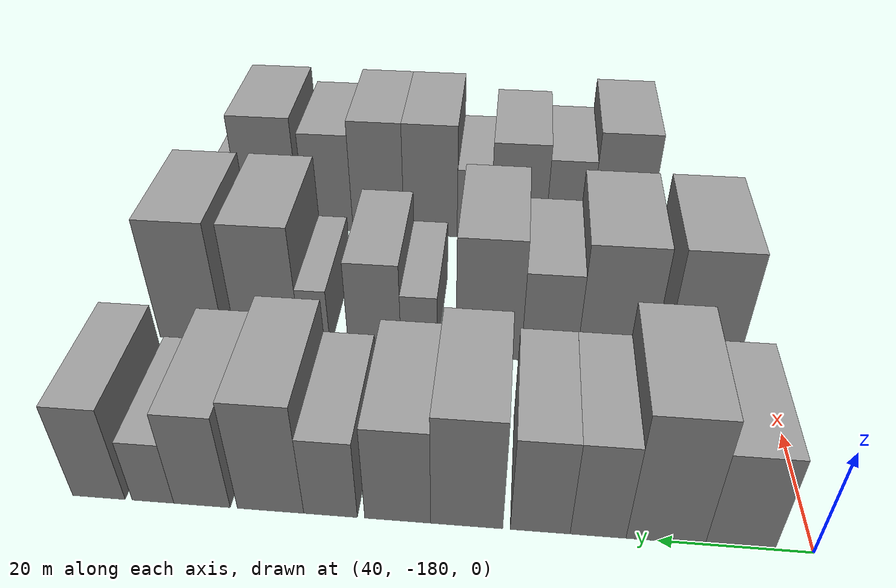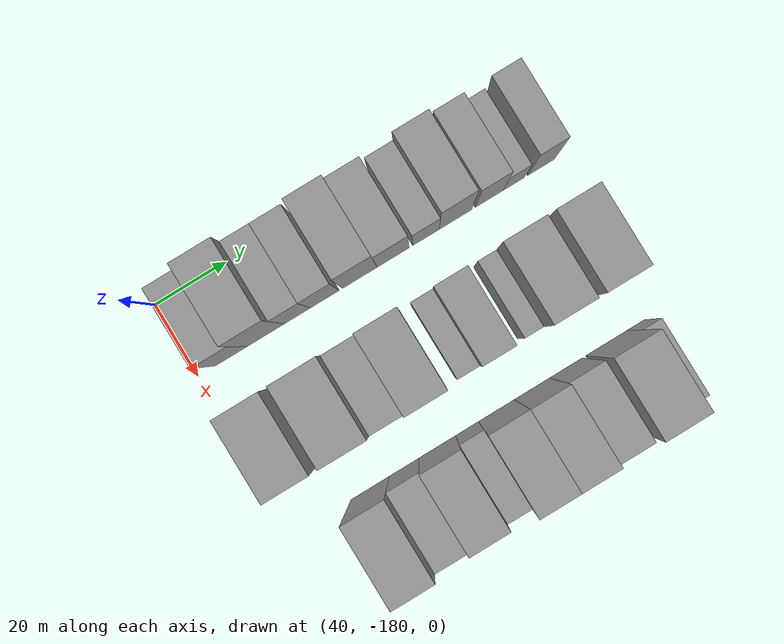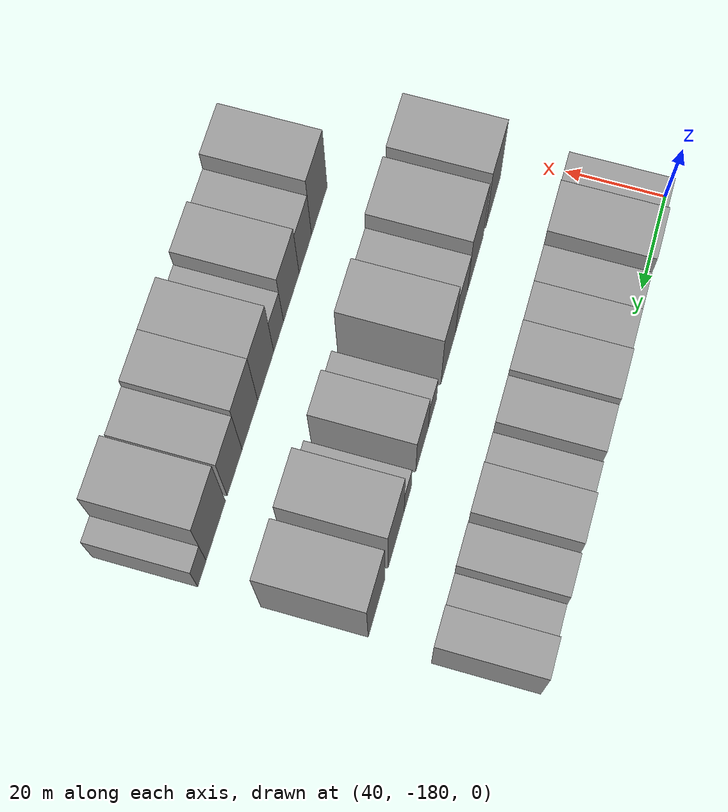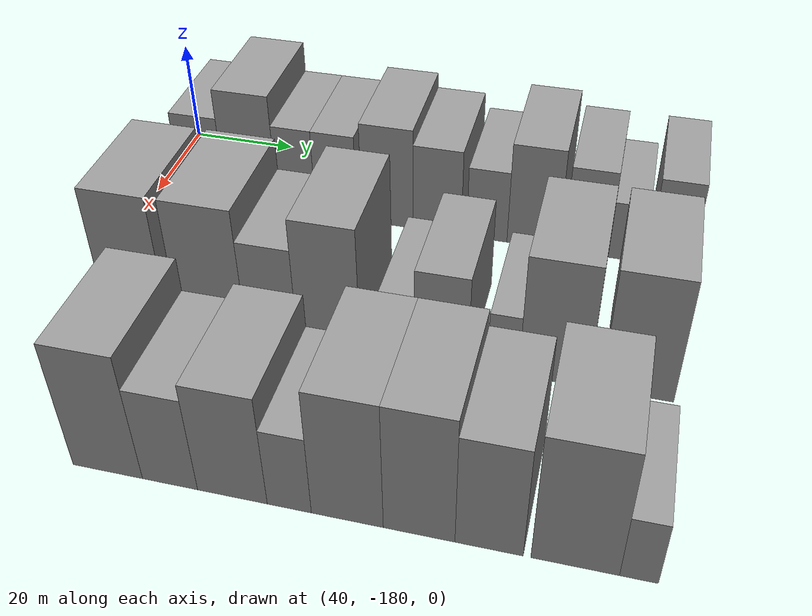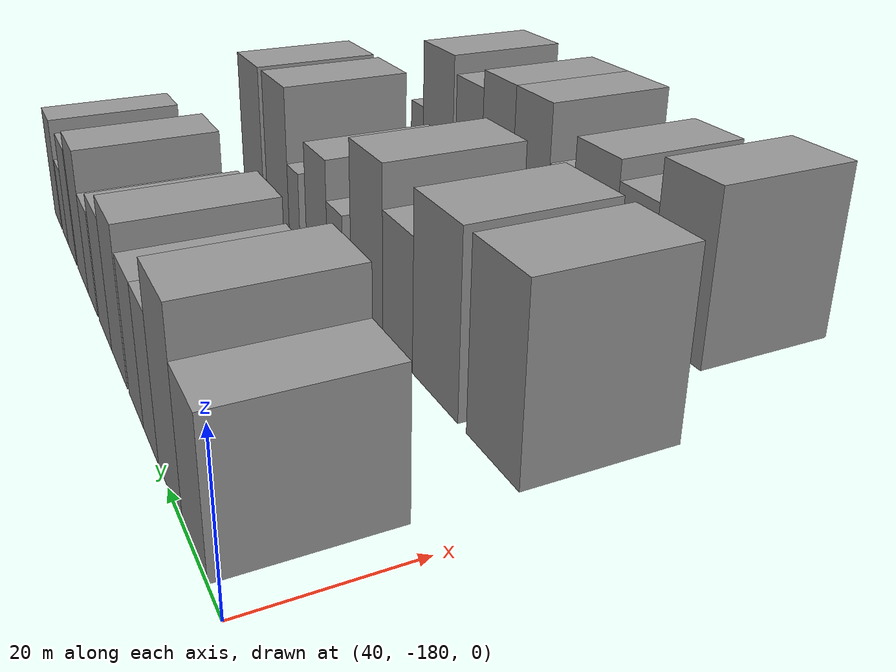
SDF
<sdf version="1.6">
 <world name="default">
  <model name="building_21">
   <static>1</static>
   <pose>50.0000 -170.6082 0 0.000000 0.000000 0.000000</pose>
   <link name="link">
    <pose>0 0 9.00 0 0 0</pose>
    <collision name="collision"><geometry><box><size>20.0000 8.9684 18.0000</size></box></geometry></collision>
    <visual name="visual">
     <cast_shadows>0</cast_shadows>
     <geometry><box><size>20.0000 8.9684 18.0000</size></box></geometry>
     <material>
      <script>
       <uri>model://grey_wall/materials/scripts</uri>
       <uri>model://grey_wall/materials/textures</uri>
       <name>vrc/grey_wall</name>
      </script>
     </material>
    </visual>
   </link>
  </model>
  <model name="building_22">
   <static>1</static>
   <pose>50.0000 -160.9771 0 0.000000 0.000000 0.000000</pose>
   <link name="link">
    <pose>0 0 12.00 0 0 0</pose>
    <collision name="collision"><geometry><box><size>20.0000 10.2938 24.0000</size></box></geometry></collision>
    <visual name="visual">
     <cast_shadows>0</cast_shadows>
     <geometry><box><size>20.0000 10.2938 24.0000</size></box></geometry>
     <material>
      <script>
       <uri>model://grey_wall/materials/scripts</uri>
       <uri>model://grey_wall/materials/textures</uri>
       <name>vrc/grey_wall</name>
      </script>
     </material>
    </visual>
   </link>
  </model>
  <model name="building_23">
   <static>1</static>
   <pose>50.0000 -152.1624 0 0.000000 0.000000 0.000000</pose>
   <link name="link">
    <pose>0 0 9.00 0 0 0</pose>
    <collision name="collision"><geometry><box><size>20.0000 7.3357 18.0000</size></box></geometry></collision>
    <visual name="visual">
     <cast_shadows>0</cast_shadows>
     <geometry><box><size>20.0000 7.3357 18.0000</size></box></geometry>
     <material>
      <script>
       <uri>model://grey_wall/materials/scripts</uri>
       <uri>model://grey_wall/materials/textures</uri>
       <name>vrc/grey_wall</name>
      </script>
     </material>
    </visual>
   </link>
  </model>
  <model name="building_24">
   <static>1</static>
   <pose>50.0000 -144.5276 0 0.000000 0.000000 0.000000</pose>
   <link name="link">
    <pose>0 0 9.00 0 0 0</pose>
    <collision name="collision"><geometry><box><size>20.0000 7.9338 18.0000</size></box></geometry></collision>
    <visual name="visual">
     <cast_shadows>0</cast_shadows>
     <geometry><box><size>20.0000 7.9338 18.0000</size></box></geometry>
     <material>
      <script>
       <uri>model://grey_wall/materials/scripts</uri>
       <uri>model://grey_wall/materials/textures</uri>
       <name>vrc/grey_wall</name>
      </script>
     </material>
    </visual>
   </link>
  </model>
  <model name="building_25">
   <static>1</static>
   <pose>50.0000 -134.7322 0 0.000000 0.000000 0.000000</pose>
   <link name="link">
    <pose>0 0 10.50 0 0 0</pose>
    <collision name="collision"><geometry><box><size>20.0000 9.6570 21.0000</size></box></geometry></collision>
    <visual name="visual">
     <cast_shadows>0</cast_shadows>
     <geometry><box><size>20.0000 9.6570 21.0000</size></box></geometry>
     <material>
      <script>
       <uri>model://grey_wall/materials/scripts</uri>
       <uri>model://grey_wall/materials/textures</uri>
       <name>vrc/grey_wall</name>
      </script>
     </material>
    </visual>
   </link>
  </model>
  <model name="building_26">
   <static>1</static>
   <pose>50.0000 -125.4382 0 0.000000 0.000000 0.000000</pose>
   <link name="link">
    <pose>0 0 9.00 0 0 0</pose>
    <collision name="collision"><geometry><box><size>20.0000 8.9311 18.0000</size></box></geometry></collision>
    <visual name="visual">
     <cast_shadows>0</cast_shadows>
     <geometry><box><size>20.0000 8.9311 18.0000</size></box></geometry>
     <material>
      <script>
       <uri>model://grey_wall/materials/scripts</uri>
       <uri>model://grey_wall/materials/textures</uri>
       <name>vrc/grey_wall</name>
      </script>
     </material>
    </visual>
   </link>
  </model>
  <model name="building_27">
   <static>1</static>
   <pose>50.0000 -116.3024 0 0.000000 0.000000 0.000000</pose>
   <link name="link">
    <pose>0 0 7.50 0 0 0</pose>
    <collision name="collision"><geometry><box><size>20.0000 7.3405 15.0000</size></box></geometry></collision>
    <visual name="visual">
     <cast_shadows>0</cast_shadows>
     <geometry><box><size>20.0000 7.3405 15.0000</size></box></geometry>
     <material>
      <script>
       <uri>model://grey_wall/materials/scripts</uri>
       <uri>model://grey_wall/materials/textures</uri>
       <name>vrc/grey_wall</name>
      </script>
     </material>
    </visual>
   </link>
  </model>
  <model name="building_28">
   <static>1</static>
   <pose>50.0000 -108.0398 0 0.000000 0.000000 0.000000</pose>
   <link name="link">
    <pose>0 0 10.50 0 0 0</pose>
    <collision name="collision"><geometry><box><size>20.0000 9.1847 21.0000</size></box></geometry></collision>
    <visual name="visual">
     <cast_shadows>0</cast_shadows>
     <geometry><box><size>20.0000 9.1847 21.0000</size></box></geometry>
     <material>
      <script>
       <uri>model://grey_wall/materials/scripts</uri>
       <uri>model://grey_wall/materials/textures</uri>
       <name>vrc/grey_wall</name>
      </script>
     </material>
    </visual>
   </link>
  </model>
  <model name="building_29">
   <static>1</static>
   <pose>50.0000 -98.5034 0 0.000000 0.000000 0.000000</pose>
   <link name="link">
    <pose>0 0 9.00 0 0 0</pose>
    <collision name="collision"><geometry><box><size>20.0000 7.8880 18.0000</size></box></geometry></collision>
    <visual name="visual">
     <cast_shadows>0</cast_shadows>
     <geometry><box><size>20.0000 7.8880 18.0000</size></box></geometry>
     <material>
      <script>
       <uri>model://grey_wall/materials/scripts</uri>
       <uri>model://grey_wall/materials/textures</uri>
       <name>vrc/grey_wall</name>
      </script>
     </material>
    </visual>
   </link>
  </model>
  <model name="building_30">
   <static>1</static>
   <pose>50.0000 -91.6284 0 0.000000 0.000000 0.000000</pose>
   <link name="link">
    <pose>0 0 6.00 0 0 0</pose>
    <collision name="collision"><geometry><box><size>20.0000 5.8620 12.0000</size></box></geometry></collision>
    <visual name="visual">
     <cast_shadows>0</cast_shadows>
     <geometry><box><size>20.0000 5.8620 12.0000</size></box></geometry>
     <material>
      <script>
       <uri>model://grey_wall/materials/scripts</uri>
       <uri>model://grey_wall/materials/textures</uri>
       <name>vrc/grey_wall</name>
      </script>
     </material>
    </visual>
   </link>
  </model>
  <model name="building_31">
   <static>1</static>
   <pose>50.0000 -83.9766 0 0.000000 0.000000 0.000000</pose>
   <link name="link">
    <pose>0 0 9.00 0 0 0</pose>
    <collision name="collision"><geometry><box><size>20.0000 7.4414 18.0000</size></box></geometry></collision>
    <visual name="visual">
     <cast_shadows>0</cast_shadows>
     <geometry><box><size>20.0000 7.4414 18.0000</size></box></geometry>
     <material>
      <script>
       <uri>model://grey_wall/materials/scripts</uri>
       <uri>model://grey_wall/materials/textures</uri>
       <name>vrc/grey_wall</name>
      </script>
     </material>
    </visual>
   </link>
  </model>
  <model name="building_104">
   <static>1</static>
   <pose>82.0000 -169.5747 0 0.000000 0.000000 0.000000</pose>
   <link name="link">
    <pose>0 0 12.00 0 0 0</pose>
    <collision name="collision"><geometry><box><size>20.0000 11.3066 24.0000</size></box></geometry></collision>
    <visual name="visual">
     <cast_shadows>0</cast_shadows>
     <geometry><box><size>20.0000 11.3066 24.0000</size></box></geometry>
     <material>
      <script>
       <uri>model://grey_wall/materials/scripts</uri>
       <uri>model://grey_wall/materials/textures</uri>
       <name>vrc/grey_wall</name>
      </script>
     </material>
    </visual>
   </link>
  </model>
  <model name="building_105">
   <static>1</static>
   <pose>82.0000 -156.0349 0 0.000000 0.000000 0.000000</pose>
   <link name="link">
    <pose>0 0 12.00 0 0 0</pose>
    <collision name="collision"><geometry><box><size>20.0000 11.7731 24.0000</size></box></geometry></collision>
    <visual name="visual">
     <cast_shadows>0</cast_shadows>
     <geometry><box><size>20.0000 11.7731 24.0000</size></box></geometry>
     <material>
      <script>
       <uri>model://grey_wall/materials/scripts</uri>
       <uri>model://grey_wall/materials/textures</uri>
       <name>vrc/grey_wall</name>
      </script>
     </material>
    </visual>
   </link>
  </model>
  <model name="building_106">
   <static>1</static>
   <pose>82.0000 -145.7401 0 0.000000 0.000000 0.000000</pose>
   <link name="link">
    <pose>0 0 9.00 0 0 0</pose>
    <collision name="collision"><geometry><box><size>20.0000 8.8165 18.0000</size></box></geometry></collision>
    <visual name="visual">
     <cast_shadows>0</cast_shadows>
     <geometry><box><size>20.0000 8.8165 18.0000</size></box></geometry>
     <material>
      <script>
       <uri>model://grey_wall/materials/scripts</uri>
       <uri>model://grey_wall/materials/textures</uri>
       <name>vrc/grey_wall</name>
      </script>
     </material>
    </visual>
   </link>
  </model>
  <model name="building_107">
   <static>1</static>
   <pose>82.0000 -136.0598 0 0.000000 0.000000 0.000000</pose>
   <link name="link">
    <pose>0 0 12.00 0 0 0</pose>
    <collision name="collision"><geometry><box><size>20.0000 10.5439 24.0000</size></box></geometry></collision>
    <visual name="visual">
     <cast_shadows>0</cast_shadows>
     <geometry><box><size>20.0000 10.5439 24.0000</size></box></geometry>
     <material>
      <script>
       <uri>model://grey_wall/materials/scripts</uri>
       <uri>model://grey_wall/materials/textures</uri>
       <name>vrc/grey_wall</name>
      </script>
     </material>
    </visual>
   </link>
  </model>
  <model name="building_108">
   <static>1</static>
   <pose>82.0000 -124.8444 0 0.000000 0.000000 0.000000</pose>
   <link name="link">
    <pose>0 0 6.00 0 0 0</pose>
    <collision name="collision"><geometry><box><size>20.0000 5.8870 12.0000</size></box></geometry></collision>
    <visual name="visual">
     <cast_shadows>0</cast_shadows>
     <geometry><box><size>20.0000 5.8870 12.0000</size></box></geometry>
     <material>
      <script>
       <uri>model://grey_wall/materials/scripts</uri>
       <uri>model://grey_wall/materials/textures</uri>
       <name>vrc/grey_wall</name>
      </script>
     </material>
    </visual>
   </link>
  </model>
  <model name="building_109">
   <static>1</static>
   <pose>82.0000 -117.5791 0 0.000000 0.000000 0.000000</pose>
   <link name="link">
    <pose>0 0 9.00 0 0 0</pose>
    <collision name="collision"><geometry><box><size>20.0000 8.6437 18.0000</size></box></geometry></collision>
    <visual name="visual">
     <cast_shadows>0</cast_shadows>
     <geometry><box><size>20.0000 8.6437 18.0000</size></box></geometry>
     <material>
      <script>
       <uri>model://grey_wall/materials/scripts</uri>
       <uri>model://grey_wall/materials/textures</uri>
       <name>vrc/grey_wall</name>
      </script>
     </material>
    </visual>
   </link>
  </model>
  <model name="building_110">
   <static>1</static>
   <pose>82.0000 -107.7934 0 0.000000 0.000000 0.000000</pose>
   <link name="link">
    <pose>0 0 6.00 0 0 0</pose>
    <collision name="collision"><geometry><box><size>20.0000 4.9277 12.0000</size></box></geometry></collision>
    <visual name="visual">
     <cast_shadows>0</cast_shadows>
     <geometry><box><size>20.0000 4.9277 12.0000</size></box></geometry>
     <material>
      <script>
       <uri>model://grey_wall/materials/scripts</uri>
       <uri>model://grey_wall/materials/textures</uri>
       <name>vrc/grey_wall</name>
      </script>
     </material>
    </visual>
   </link>
  </model>
  <model name="building_111">
   <static>1</static>
   <pose>82.0000 -99.9474 0 0.000000 0.000000 0.000000</pose>
   <link name="link">
    <pose>0 0 12.00 0 0 0</pose>
    <collision name="collision"><geometry><box><size>20.0000 10.7643 24.0000</size></box></geometry></collision>
    <visual name="visual">
     <cast_shadows>0</cast_shadows>
     <geometry><box><size>20.0000 10.7643 24.0000</size></box></geometry>
     <material>
      <script>
       <uri>model://grey_wall/materials/scripts</uri>
       <uri>model://grey_wall/materials/textures</uri>
       <name>vrc/grey_wall</name>
      </script>
     </material>
    </visual>
   </link>
  </model>
  <model name="building_112">
   <static>1</static>
   <pose>82.0000 -87.1145 0 0.000000 0.000000 0.000000</pose>
   <link name="link">
    <pose>0 0 12.00 0 0 0</pose>
    <collision name="collision"><geometry><box><size>20.0000 10.9016 24.0000</size></box></geometry></collision>
    <visual name="visual">
     <cast_shadows>0</cast_shadows>
     <geometry><box><size>20.0000 10.9016 24.0000</size></box></geometry>
     <material>
      <script>
       <uri>model://grey_wall/materials/scripts</uri>
       <uri>model://grey_wall/materials/textures</uri>
       <name>vrc/grey_wall</name>
      </script>
     </material>
    </visual>
   </link>
  </model>
  <model name="building_181">
   <static>1</static>
   <pose>114.0000 -158.7139 0 0.000000 0.000000 0.000000</pose>
   <link name="link">
    <pose>0 0 12.00 0 0 0</pose>
    <collision name="collision"><geometry><box><size>20.0000 10.6459 24.0000</size></box></geometry></collision>
    <visual name="visual">
     <cast_shadows>0</cast_shadows>
     <geometry><box><size>20.0000 10.6459 24.0000</size></box></geometry>
     <material>
      <script>
       <uri>model://grey_wall/materials/scripts</uri>
       <uri>model://grey_wall/materials/textures</uri>
       <name>vrc/grey_wall</name>
      </script>
     </material>
    </visual>
   </link>
  </model>
  <model name="building_182">
   <static>1</static>
   <pose>114.0000 -149.2567 0 0.000000 0.000000 0.000000</pose>
   <link name="link">
    <pose>0 0 9.00 0 0 0</pose>
    <collision name="collision"><geometry><box><size>20.0000 8.2686 18.0000</size></box></geometry></collision>
    <visual name="visual">
     <cast_shadows>0</cast_shadows>
     <geometry><box><size>20.0000 8.2686 18.0000</size></box></geometry>
     <material>
      <script>
       <uri>model://grey_wall/materials/scripts</uri>
       <uri>model://grey_wall/materials/textures</uri>
       <name>vrc/grey_wall</name>
      </script>
     </material>
    </visual>
   </link>
  </model>
  <model name="building_183">
   <static>1</static>
   <pose>114.0000 -140.0115 0 0.000000 0.000000 0.000000</pose>
   <link name="link">
    <pose>0 0 10.50 0 0 0</pose>
    <collision name="collision"><geometry><box><size>20.0000 10.2218 21.0000</size></box></geometry></collision>
    <visual name="visual">
     <cast_shadows>0</cast_shadows>
     <geometry><box><size>20.0000 10.2218 21.0000</size></box></geometry>
     <material>
      <script>
       <uri>model://grey_wall/materials/scripts</uri>
       <uri>model://grey_wall/materials/textures</uri>
       <name>vrc/grey_wall</name>
      </script>
     </material>
    </visual>
   </link>
  </model>
  <model name="building_184">
   <static>1</static>
   <pose>114.0000 -131.7333 0 0.000000 0.000000 0.000000</pose>
   <link name="link">
    <pose>0 0 7.50 0 0 0</pose>
    <collision name="collision"><geometry><box><size>20.0000 6.3345 15.0000</size></box></geometry></collision>
    <visual name="visual">
     <cast_shadows>0</cast_shadows>
     <geometry><box><size>20.0000 6.3345 15.0000</size></box></geometry>
     <material>
      <script>
       <uri>model://grey_wall/materials/scripts</uri>
       <uri>model://grey_wall/materials/textures</uri>
       <name>vrc/grey_wall</name>
      </script>
     </material>
    </visual>
   </link>
  </model>
  <model name="building_185">
   <static>1</static>
   <pose>114.0000 -123.5079 0 0.000000 0.000000 0.000000</pose>
   <link name="link">
    <pose>0 0 12.00 0 0 0</pose>
    <collision name="collision"><geometry><box><size>20.0000 10.1165 24.0000</size></box></geometry></collision>
    <visual name="visual">
     <cast_shadows>0</cast_shadows>
     <geometry><box><size>20.0000 10.1165 24.0000</size></box></geometry>
     <material>
      <script>
       <uri>model://grey_wall/materials/scripts</uri>
       <uri>model://grey_wall/materials/textures</uri>
       <name>vrc/grey_wall</name>
      </script>
     </material>
    </visual>
   </link>
  </model>
  <model name="building_186">
   <static>1</static>
   <pose>114.0000 -113.5415 0 0.000000 0.000000 0.000000</pose>
   <link name="link">
    <pose>0 0 12.00 0 0 0</pose>
    <collision name="collision"><geometry><box><size>20.0000 9.8163 24.0000</size></box></geometry></collision>
    <visual name="visual">
     <cast_shadows>0</cast_shadows>
     <geometry><box><size>20.0000 9.8163 24.0000</size></box></geometry>
     <material>
      <script>
       <uri>model://grey_wall/materials/scripts</uri>
       <uri>model://grey_wall/materials/textures</uri>
       <name>vrc/grey_wall</name>
      </script>
     </material>
    </visual>
   </link>
  </model>
  <model name="building_187">
   <static>1</static>
   <pose>114.0000 -104.0672 0 0.000000 0.000000 0.000000</pose>
   <link name="link">
    <pose>0 0 10.50 0 0 0</pose>
    <collision name="collision"><geometry><box><size>20.0000 9.1324 21.0000</size></box></geometry></collision>
    <visual name="visual">
     <cast_shadows>0</cast_shadows>
     <geometry><box><size>20.0000 9.1324 21.0000</size></box></geometry>
     <material>
      <script>
       <uri>model://grey_wall/materials/scripts</uri>
       <uri>model://grey_wall/materials/textures</uri>
       <name>vrc/grey_wall</name>
      </script>
     </material>
    </visual>
   </link>
  </model>
  <model name="building_188">
   <static>1</static>
   <pose>114.0000 -92.7396 0 0.000000 0.000000 0.000000</pose>
   <link name="link">
    <pose>0 0 12.00 0 0 0</pose>
    <collision name="collision"><geometry><box><size>20.0000 11.5228 24.0000</size></box></geometry></collision>
    <visual name="visual">
     <cast_shadows>0</cast_shadows>
     <geometry><box><size>20.0000 11.5228 24.0000</size></box></geometry>
     <material>
      <script>
       <uri>model://grey_wall/materials/scripts</uri>
       <uri>model://grey_wall/materials/textures</uri>
       <name>vrc/grey_wall</name>
      </script>
     </material>
    </visual>
   </link>
  </model>
  <model name="building_189">
   <static>1</static>
   <pose>114.0000 -84.5058 0 0.000000 0.000000 0.000000</pose>
   <link name="link">
    <pose>0 0 6.00 0 0 0</pose>
    <collision name="collision"><geometry><box><size>20.0000 4.9447 12.0000</size></box></geometry></collision>
    <visual name="visual">
     <cast_shadows>0</cast_shadows>
     <geometry><box><size>20.0000 4.9447 12.0000</size></box></geometry>
     <material>
      <script>
       <uri>model://grey_wall/materials/scripts</uri>
       <uri>model://grey_wall/materials/textures</uri>
       <name>vrc/grey_wall</name>
      </script>
     </material>
    </visual>
   </link>
  </model>
 </world>
</sdf>
